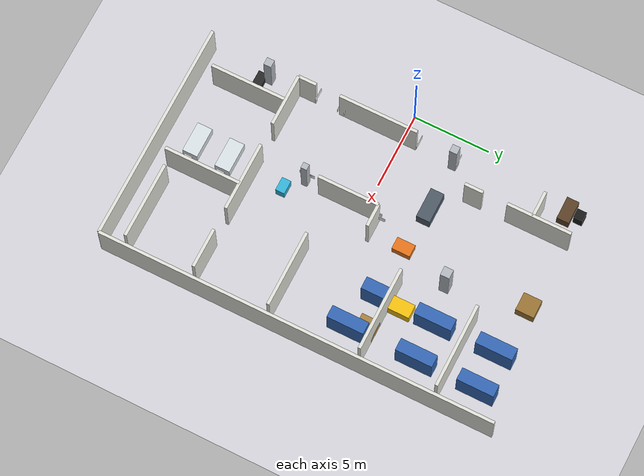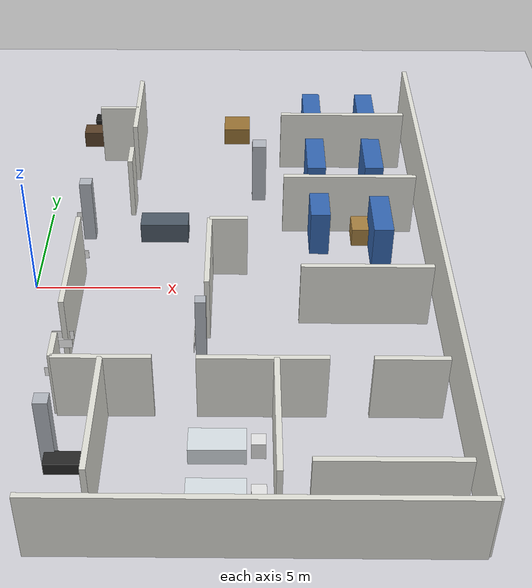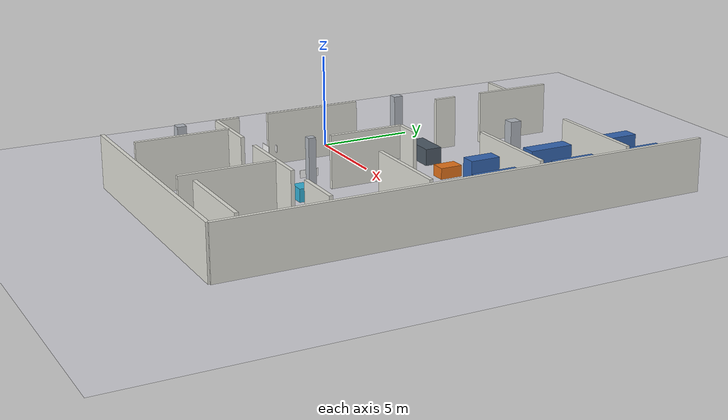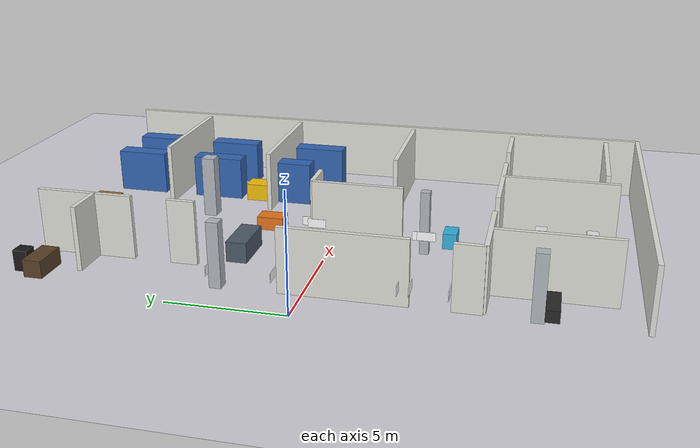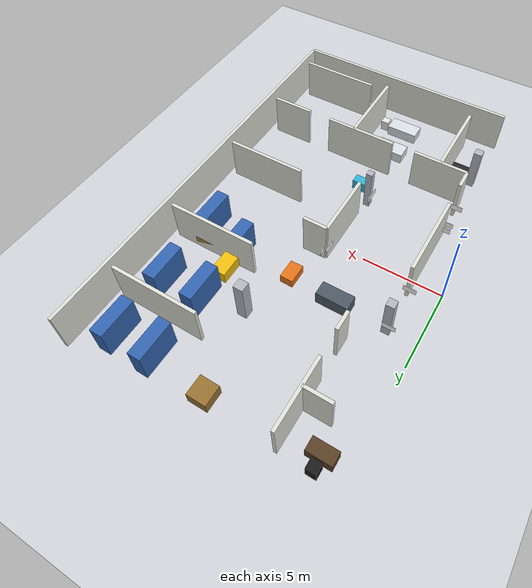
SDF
<sdf version="1.9">
 <world name="realistic_facility_world">
  <model name="ground_plane">
   <static>true</static>
   <link name="link">
    <collision name="collision">
     <geometry><plane><normal>0 0 1</normal><size>36 30</size></plane></geometry>
    </collision>
    <visual name="visual">
     <geometry><plane><normal>0 0 1</normal><size>36 30</size></plane></geometry>
     <material>
      <ambient>0.82 0.82 0.85 1</ambient>
      <diffuse>0.82 0.82 0.85 1</diffuse>
      <specular>0.15 0.15 0.15 1</specular>
     </material>
    </visual>
   </link>
  </model>
  <model name="wall_south_right">
   <static>true</static>
   <pose>8.750 -13.000 1.4 0 0 0</pose>
   <link name="link">
    <collision name="collision"><geometry><box><size>14.500 0.200 2.8</size></box></geometry></collision>
    <visual name="visual">
     <geometry><box><size>14.500 0.200 2.8</size></box></geometry>
     <material>
      <ambient>0.88 0.88 0.85 1</ambient>
      <diffuse>0.88 0.88 0.85 1</diffuse>
      <specular>0.1 0.1 0.1 1</specular>
     </material>
    </visual>
   </link>
  </model>
  <model name="wall_east">
   <static>true</static>
   <pose>16.000 0.000 1.4 0 0 0</pose>
   <link name="link">
    <collision name="collision"><geometry><box><size>0.200 26.000 2.8</size></box></geometry></collision>
    <visual name="visual">
     <geometry><box><size>0.200 26.000 2.8</size></box></geometry>
     <material>
      <ambient>0.88 0.88 0.85 1</ambient>
      <diffuse>0.88 0.88 0.85 1</diffuse>
      <specular>0.1 0.1 0.1 1</specular>
     </material>
    </visual>
   </link>
  </model>
  <model name="wall_rec_div_e1">
   <static>true</static>
   <pose>3.525 -7.000 1.4 0 0 0</pose>
   <link name="link">
    <collision name="collision"><geometry><box><size>3.450 0.200 2.8</size></box></geometry></collision>
    <visual name="visual">
     <geometry><box><size>3.450 0.200 2.8</size></box></geometry>
     <material>
      <ambient>0.88 0.88 0.85 1</ambient>
      <diffuse>0.88 0.88 0.85 1</diffuse>
      <specular>0.1 0.1 0.1 1</specular>
     </material>
    </visual>
   </link>
  </model>
  <model name="wall_rec_div_e2">
   <static>true</static>
   <pose>9.025 -7.000 1.4 0 0 0</pose>
   <link name="link">
    <collision name="collision"><geometry><box><size>4.550 0.200 2.8</size></box></geometry></collision>
    <visual name="visual">
     <geometry><box><size>4.550 0.200 2.8</size></box></geometry>
     <material>
      <ambient>0.88 0.88 0.85 1</ambient>
      <diffuse>0.88 0.88 0.85 1</diffuse>
      <specular>0.1 0.1 0.1 1</specular>
     </material>
    </visual>
   </link>
  </model>
  <model name="wall_spine_e_south">
   <static>true</static>
   <pose>1.800 -6.400 1.4 0 0 0</pose>
   <link name="link">
    <collision name="collision"><geometry><box><size>0.200 1.200 2.8</size></box></geometry></collision>
    <visual name="visual">
     <geometry><box><size>0.200 1.200 2.8</size></box></geometry>
     <material>
      <ambient>0.88 0.88 0.85 1</ambient>
      <diffuse>0.88 0.88 0.85 1</diffuse>
      <specular>0.1 0.1 0.1 1</specular>
     </material>
    </visual>
   </link>
  </model>
  <model name="wall_spine_e_mid">
   <static>true</static>
   <pose>1.800 -1.600 1.4 0 0 0</pose>
   <link name="link">
    <collision name="collision"><geometry><box><size>0.200 5.200 2.8</size></box></geometry></collision>
    <visual name="visual">
     <geometry><box><size>0.200 5.200 2.8</size></box></geometry>
     <material>
      <ambient>0.88 0.88 0.85 1</ambient>
      <diffuse>0.88 0.88 0.85 1</diffuse>
      <specular>0.1 0.1 0.1 1</specular>
     </material>
    </visual>
   </link>
  </model>
  <model name="wall_hosp_ward_w">
   <static>true</static>
   <pose>3.500 -9.500 1.4 0 0 0</pose>
   <link name="link">
    <collision name="collision"><geometry><box><size>0.200 5.000 2.8</size></box></geometry></collision>
    <visual name="visual">
     <geometry><box><size>0.200 5.000 2.8</size></box></geometry>
     <material>
      <ambient>0.88 0.88 0.85 1</ambient>
      <diffuse>0.88 0.88 0.85 1</diffuse>
      <specular>0.1 0.1 0.1 1</specular>
     </material>
    </visual>
   </link>
  </model>
  <model name="wall_hosp_ward_div">
   <static>true</static>
   <pose>9.500 -9.500 1.4 0 0 0</pose>
   <link name="link">
    <collision name="collision"><geometry><box><size>0.200 5.000 2.8</size></box></geometry></collision>
    <visual name="visual">
     <geometry><box><size>0.200 5.000 2.8</size></box></geometry>
     <material>
      <ambient>0.88 0.88 0.85 1</ambient>
      <diffuse>0.88 0.88 0.85 1</diffuse>
      <specular>0.1 0.1 0.1 1</specular>
     </material>
    </visual>
   </link>
  </model>
  <model name="wall_triage_n">
   <static>true</static>
   <pose>13.000 -2.000 1.4 0 0 0</pose>
   <link name="link">
    <collision name="collision"><geometry><box><size>5.000 0.200 2.8</size></box></geometry></collision>
    <visual name="visual">
     <geometry><box><size>5.000 0.200 2.8</size></box></geometry>
     <material>
      <ambient>0.88 0.88 0.85 1</ambient>
      <diffuse>0.88 0.88 0.85 1</diffuse>
      <specular>0.1 0.1 0.1 1</specular>
     </material>
    </visual>
   </link>
  </model>
  <model name="wall_hosp_alcove_n">
   <static>true</static>
   <pose>14.100 -7.000 1.4 0 0 0</pose>
   <link name="link">
    <collision name="collision"><geometry><box><size>2.600 0.200 2.8</size></box></geometry></collision>
    <visual name="visual">
     <geometry><box><size>2.600 0.200 2.8</size></box></geometry>
     <material>
      <ambient>0.88 0.88 0.85 1</ambient>
      <diffuse>0.88 0.88 0.85 1</diffuse>
      <specular>0.1 0.1 0.1 1</specular>
     </material>
    </visual>
   </link>
  </model>
  <model name="wall_hosp_alcove_s">
   <static>true</static>
   <pose>13.000 -11.500 1.4 0 0 0</pose>
   <link name="link">
    <collision name="collision"><geometry><box><size>5.000 0.200 2.8</size></box></geometry></collision>
    <visual name="visual">
     <geometry><box><size>5.000 0.200 2.8</size></box></geometry>
     <material>
      <ambient>0.88 0.88 0.85 1</ambient>
      <diffuse>0.88 0.88 0.85 1</diffuse>
      <specular>0.1 0.1 0.1 1</specular>
     </material>
    </visual>
   </link>
  </model>
  <model name="wall_cross_e">
   <static>true</static>
   <pose>7.750 1.000 1.4 0 0 0</pose>
   <link name="link">
    <collision name="collision"><geometry><box><size>1.500 0.200 2.8</size></box></geometry></collision>
    <visual name="visual">
     <geometry><box><size>1.500 0.200 2.8</size></box></geometry>
     <material>
      <ambient>0.88 0.88 0.85 1</ambient>
      <diffuse>0.88 0.88 0.85 1</diffuse>
      <specular>0.1 0.1 0.1 1</specular>
     </material>
    </visual>
   </link>
  </model>
  <model name="wall_office_e_south">
   <static>true</static>
   <pose>3.500 5.600 1.4 0 0 0</pose>
   <link name="link">
    <collision name="collision"><geometry><box><size>0.200 1.200 2.8</size></box></geometry></collision>
    <visual name="visual">
     <geometry><box><size>0.200 1.200 2.8</size></box></geometry>
     <material>
      <ambient>0.88 0.88 0.85 1</ambient>
      <diffuse>0.88 0.88 0.85 1</diffuse>
      <specular>0.1 0.1 0.1 1</specular>
     </material>
    </visual>
   </link>
  </model>
  <model name="wall_office_e_north">
   <static>true</static>
   <pose>3.500 9.900 1.4 0 0 0</pose>
   <link name="link">
    <collision name="collision"><geometry><box><size>0.200 4.200 2.8</size></box></geometry></collision>
    <visual name="visual">
     <geometry><box><size>0.200 4.200 2.8</size></box></geometry>
     <material>
      <ambient>0.88 0.88 0.85 1</ambient>
      <diffuse>0.88 0.88 0.85 1</diffuse>
      <specular>0.1 0.1 0.1 1</specular>
     </material>
    </visual>
   </link>
  </model>
  <model name="wall_archive_s">
   <static>true</static>
   <pose>2.650 9.500 1.4 0 0 0</pose>
   <link name="link">
    <collision name="collision"><geometry><box><size>1.700 0.200 2.8</size></box></geometry></collision>
    <visual name="visual">
     <geometry><box><size>1.700 0.200 2.8</size></box></geometry>
     <material>
      <ambient>0.88 0.88 0.85 1</ambient>
      <diffuse>0.88 0.88 0.85 1</diffuse>
      <specular>0.1 0.1 0.1 1</specular>
     </material>
    </visual>
   </link>
  </model>
  <model name="wall_wh_corridor_e">
   <static>true</static>
   <pose>7.000 -1.000 1.4 0 0 0</pose>
   <link name="link">
    <collision name="collision"><geometry><box><size>0.200 4.000 2.8</size></box></geometry></collision>
    <visual name="visual">
     <geometry><box><size>0.200 4.000 2.8</size></box></geometry>
     <material>
      <ambient>0.88 0.88 0.85 1</ambient>
      <diffuse>0.88 0.88 0.85 1</diffuse>
      <specular>0.1 0.1 0.1 1</specular>
     </material>
    </visual>
   </link>
  </model>
  <model name="wall_wh_div_1">
   <static>true</static>
   <pose>12.750 4.000 1.4 0 0 0</pose>
   <link name="link">
    <collision name="collision"><geometry><box><size>5.500 0.200 2.8</size></box></geometry></collision>
    <visual name="visual">
     <geometry><box><size>5.500 0.200 2.8</size></box></geometry>
     <material>
      <ambient>0.88 0.88 0.85 1</ambient>
      <diffuse>0.88 0.88 0.85 1</diffuse>
      <specular>0.1 0.1 0.1 1</specular>
     </material>
    </visual>
   </link>
  </model>
  <model name="wall_wh_div_2">
   <static>true</static>
   <pose>12.750 9.000 1.4 0 0 0</pose>
   <link name="link">
    <collision name="collision"><geometry><box><size>5.500 0.200 2.8</size></box></geometry></collision>
    <visual name="visual">
     <geometry><box><size>5.500 0.200 2.8</size></box></geometry>
     <material>
      <ambient>0.88 0.88 0.85 1</ambient>
      <diffuse>0.88 0.88 0.85 1</diffuse>
      <specular>0.1 0.1 0.1 1</specular>
     </material>
    </visual>
   </link>
  </model>
  <model name="pillar_rec_2">
   <static>true</static>
   <pose>1.800 -9.000 1.4 0 0 0</pose>
   <link name="link">
    <collision name="collision"><geometry><box><size>0.500 0.500 2.8</size></box></geometry></collision>
    <visual name="visual">
     <geometry><box><size>0.500 0.500 2.8</size></box></geometry>
     <material><ambient>0.7 0.72 0.75 1</ambient><diffuse>0.7 0.72 0.75 1</diffuse></material>
    </visual>
   </link>
  </model>
  <model name="pillar_center_2">
   <static>true</static>
   <pose>1.800 3.500 1.4 0 0 0</pose>
   <link name="link">
    <collision name="collision"><geometry><box><size>0.500 0.500 2.8</size></box></geometry></collision>
    <visual name="visual">
     <geometry><box><size>0.500 0.500 2.8</size></box></geometry>
     <material><ambient>0.7 0.72 0.75 1</ambient><diffuse>0.7 0.72 0.75 1</diffuse></material>
    </visual>
   </link>
  </model>
  <model name="pillar_wh_1">
   <static>true</static>
   <pose>9.000 6.500 1.4 0 0 0</pose>
   <link name="link">
    <collision name="collision"><geometry><box><size>0.600 0.600 2.8</size></box></geometry></collision>
    <visual name="visual">
     <geometry><box><size>0.600 0.600 2.8</size></box></geometry>
     <material><ambient>0.7 0.72 0.75 1</ambient><diffuse>0.7 0.72 0.75 1</diffuse></material>
    </visual>
   </link>
  </model>
  <model name="pillar_j2">
   <static>true</static>
   <pose>6.800 -4.000 1.4 0 0 0</pose>
   <link name="link">
    <collision name="collision"><geometry><box><size>0.400 0.400 2.8</size></box></geometry></collision>
    <visual name="visual">
     <geometry><box><size>0.400 0.400 2.8</size></box></geometry>
     <material><ambient>0.7 0.72 0.75 1</ambient><diffuse>0.7 0.72 0.75 1</diffuse></material>
    </visual>
   </link>
  </model>
  <model name="waiting_bench_e">
   <static>true</static>
   <pose>2.500 -9.500 0.250 0 0 0</pose>
   <link name="link">
    <collision name="collision"><geometry><box><size>1.600 0.600 0.500</size></box></geometry></collision>
    <visual name="visual">
     <geometry><box><size>1.600 0.600 0.500</size></box></geometry>
     <material><ambient>0.15 0.15 0.15 1</ambient><diffuse>0.15 0.15 0.15 1</diffuse></material>
    </visual>
   </link>
  </model>
  <model name="hospital_bed_1">
   <static>true</static>
   <pose>7.500 -8.800 0.350 0 0 0</pose>
   <link name="link">
    <collision name="collision"><geometry><box><size>2.000 1.000 0.700</size></box></geometry></collision>
    <visual name="visual">
     <geometry><box><size>2.000 1.000 0.700</size></box></geometry>
     <material><ambient>0.85 0.88 0.90 1</ambient><diffuse>0.85 0.88 0.90 1</diffuse></material>
    </visual>
   </link>
  </model>
  <model name="hospital_bed_2">
   <static>true</static>
   <pose>7.500 -11.000 0.350 0 0 0</pose>
   <link name="link">
    <collision name="collision"><geometry><box><size>2.000 1.000 0.700</size></box></geometry></collision>
    <visual name="visual">
     <geometry><box><size>2.000 1.000 0.700</size></box></geometry>
     <material><ambient>0.85 0.88 0.90 1</ambient><diffuse>0.85 0.88 0.90 1</diffuse></material>
    </visual>
   </link>
  </model>
  <model name="bedside_table_1">
   <static>true</static>
   <pose>8.900 -8.800 0.350 0 0 0</pose>
   <link name="link">
    <collision name="collision"><geometry><box><size>0.500 0.500 0.700</size></box></geometry></collision>
    <visual name="visual">
     <geometry><box><size>0.500 0.500 0.700</size></box></geometry>
     <material><ambient>0.90 0.90 0.90 1</ambient><diffuse>0.90 0.90 0.90 1</diffuse></material>
    </visual>
   </link>
  </model>
  <model name="bedside_table_2">
   <static>true</static>
   <pose>8.900 -11.000 0.350 0 0 0</pose>
   <link name="link">
    <collision name="collision"><geometry><box><size>0.500 0.500 0.700</size></box></geometry></collision>
    <visual name="visual">
     <geometry><box><size>0.500 0.500 0.700</size></box></geometry>
     <material><ambient>0.90 0.90 0.90 1</ambient><diffuse>0.90 0.90 0.90 1</diffuse></material>
    </visual>
   </link>
  </model>
  <model name="wh_rack_1">
   <static>true</static>
   <pose>11.500 3.100 1.000 0 0 0</pose>
   <link name="link">
    <collision name="collision"><geometry><box><size>0.800 1.600 2.000</size></box></geometry></collision>
    <visual name="visual">
     <geometry><box><size>0.800 1.600 2.000</size></box></geometry>
     <material><ambient>0.20 0.40 0.70 1</ambient><diffuse>0.20 0.40 0.70 1</diffuse></material>
    </visual>
   </link>
  </model>
  <model name="wh_rack_2">
   <static>true</static>
   <pose>11.500 7.000 1.000 0 0 0</pose>
   <link name="link">
    <collision name="collision"><geometry><box><size>0.800 2.400 2.000</size></box></geometry></collision>
    <visual name="visual">
     <geometry><box><size>0.800 2.400 2.000</size></box></geometry>
     <material><ambient>0.20 0.40 0.70 1</ambient><diffuse>0.20 0.40 0.70 1</diffuse></material>
    </visual>
   </link>
  </model>
  <model name="wh_rack_3">
   <static>true</static>
   <pose>11.500 11.000 1.000 0 0 0</pose>
   <link name="link">
    <collision name="collision"><geometry><box><size>0.800 2.400 2.000</size></box></geometry></collision>
    <visual name="visual">
     <geometry><box><size>0.800 2.400 2.000</size></box></geometry>
     <material><ambient>0.20 0.40 0.70 1</ambient><diffuse>0.20 0.40 0.70 1</diffuse></material>
    </visual>
   </link>
  </model>
  <model name="wh_rack_4">
   <static>true</static>
   <pose>14.000 2.500 1.000 0 0 0</pose>
   <link name="link">
    <collision name="collision"><geometry><box><size>0.800 2.400 2.000</size></box></geometry></collision>
    <visual name="visual">
     <geometry><box><size>0.800 2.400 2.000</size></box></geometry>
     <material><ambient>0.20 0.40 0.70 1</ambient><diffuse>0.20 0.40 0.70 1</diffuse></material>
    </visual>
   </link>
  </model>
  <model name="wh_rack_5">
   <static>true</static>
   <pose>14.000 7.000 1.000 0 0 0</pose>
   <link name="link">
    <collision name="collision"><geometry><box><size>0.800 2.400 2.000</size></box></geometry></collision>
    <visual name="visual">
     <geometry><box><size>0.800 2.400 2.000</size></box></geometry>
     <material><ambient>0.20 0.40 0.70 1</ambient><diffuse>0.20 0.40 0.70 1</diffuse></material>
    </visual>
   </link>
  </model>
  <model name="wh_rack_6">
   <static>true</static>
   <pose>14.000 11.000 1.000 0 0 0</pose>
   <link name="link">
    <collision name="collision"><geometry><box><size>0.800 2.400 2.000</size></box></geometry></collision>
    <visual name="visual">
     <geometry><box><size>0.800 2.400 2.000</size></box></geometry>
     <material><ambient>0.20 0.40 0.70 1</ambient><diffuse>0.20 0.40 0.70 1</diffuse></material>
    </visual>
   </link>
  </model>
  <model name="wh_pallets">
   <static>true</static>
   <pose>8.000 11.500 0.400 0 0 0</pose>
   <link name="link">
    <collision name="collision"><geometry><box><size>1.200 1.200 0.800</size></box></geometry></collision>
    <visual name="visual">
     <geometry><box><size>1.200 1.200 0.800</size></box></geometry>
     <material><ambient>0.60 0.45 0.20 1</ambient><diffuse>0.60 0.45 0.20 1</diffuse></material>
    </visual>
   </link>
  </model>
  <model name="loading_pallet_stack">
   <static>true</static>
   <pose>13.500 3.500 0.400 0 0 0</pose>
   <link name="link">
    <collision name="collision"><geometry><box><size>1.200 1.200 0.800</size></box></geometry></collision>
    <visual name="visual">
     <geometry><box><size>1.200 1.200 0.800</size></box></geometry>
     <material><ambient>0.65 0.50 0.25 1</ambient><diffuse>0.65 0.50 0.25 1</diffuse></material>
    </visual>
   </link>
  </model>
  <model name="wh_workstation_1">
   <static>true</static>
   <pose>5.000 3.500 0.450 0 0 0</pose>
   <link name="link">
    <collision name="collision"><geometry><box><size>2.000 0.900 0.900</size></box></geometry></collision>
    <visual name="visual">
     <geometry><box><size>2.000 0.900 0.900</size></box></geometry>
     <material><ambient>0.30 0.35 0.40 1</ambient><diffuse>0.30 0.35 0.40 1</diffuse></material>
    </visual>
   </link>
  </model>
  <model name="office_desk_2">
   <static>true</static>
   <pose>1.500 11.000 0.380 0 0 0</pose>
   <link name="link">
    <collision name="collision"><geometry><box><size>1.500 0.800 0.750</size></box></geometry></collision>
    <visual name="visual">
     <geometry><box><size>1.500 0.800 0.750</size></box></geometry>
     <material><ambient>0.35 0.25 0.15 1</ambient><diffuse>0.35 0.25 0.15 1</diffuse></material>
    </visual>
   </link>
  </model>
  <model name="office_chair_2">
   <static>true</static>
   <pose>1.500 11.800 0.450 0 0 0</pose>
   <link name="link">
    <collision name="collision"><geometry><box><size>0.600 0.600 0.900</size></box></geometry></collision>
    <visual name="visual">
     <geometry><box><size>0.600 0.600 0.900</size></box></geometry>
     <material><ambient>0.10 0.10 0.10 1</ambient><diffuse>0.10 0.10 0.10 1</diffuse></material>
    </visual>
   </link>
  </model>
  <model name="sign_j1_hospital">
   <static>true</static>
   <pose>1.650 -4.250 0.850 0.0 0.0 3.1416</pose>
   <link name="link">
    <visual name="board_visual">
     <geometry><box><size>0.8 0.03 0.4</size></box></geometry>
     <material>
      <ambient>1.0 1.0 1.0 1.0</ambient>
      <diffuse>1.0 1.0 1.0 1.0</diffuse>
      <specular>0.2 0.2 0.2 1.0</specular>
      <emissive>0.08 0.08 0.08 1.0</emissive>
      <pbr>
       <metal>
        <albedo_map>/home/soham-darade/CV_Autonomous_Navigation/ros2_ws/src/autonomous_robot_gazebo/materials/textures/signs/hospital_right.png</albedo_map>
        <roughness>0.2</roughness>
        <metalness>0.0</metalness>
       </metal>
      </pbr>
     </material>
    </visual>
    <collision name="board_collision"><geometry><box><size>0.8 0.03 0.4</size></box></geometry></collision>
   </link>
  </model>
  <model name="sign_j1_office">
   <static>true</static>
   <pose>1.650 -3.800 0.850 0.0 0.0 3.1416</pose>
   <link name="link">
    <visual name="board_visual">
     <geometry><box><size>0.8 0.03 0.4</size></box></geometry>
     <material>
      <ambient>1.0 1.0 1.0 1.0</ambient>
      <diffuse>1.0 1.0 1.0 1.0</diffuse>
      <specular>0.2 0.2 0.2 1.0</specular>
      <emissive>0.08 0.08 0.08 1.0</emissive>
      <pbr>
       <metal>
        <albedo_map>/home/soham-darade/CV_Autonomous_Navigation/ros2_ws/src/autonomous_robot_gazebo/materials/textures/signs/office_straight.png</albedo_map>
        <roughness>0.2</roughness>
        <metalness>0.0</metalness>
       </metal>
      </pbr>
     </material>
    </visual>
    <collision name="board_collision"><geometry><box><size>0.8 0.03 0.4</size></box></geometry></collision>
   </link>
  </model>
  <model name="sign_j1_hospital_south">
   <static>true</static>
   <pose>1.650 -5.750 0.850 0.0 0.0 0.0000</pose>
   <link name="link">
    <visual name="board_visual">
     <geometry><box><size>0.8 0.03 0.4</size></box></geometry>
     <material>
      <ambient>1.0 1.0 1.0 1.0</ambient>
      <diffuse>1.0 1.0 1.0 1.0</diffuse>
      <specular>0.2 0.2 0.2 1.0</specular>
      <emissive>0.08 0.08 0.08 1.0</emissive>
      <pbr>
       <metal>
        <albedo_map>/home/soham-darade/CV_Autonomous_Navigation/ros2_ws/src/autonomous_robot_gazebo/materials/textures/signs/hospital_left.png</albedo_map>
        <roughness>0.2</roughness>
        <metalness>0.0</metalness>
       </metal>
      </pbr>
     </material>
    </visual>
    <collision name="board_collision"><geometry><box><size>0.8 0.03 0.4</size></box></geometry></collision>
   </link>
  </model>
  <model name="sign_j2_hospital">
   <static>true</static>
   <pose>6.550 -4.100 0.850 0.0 0.0 1.5708</pose>
   <link name="link">
    <visual name="board_visual">
     <geometry><box><size>0.8 0.03 0.4</size></box></geometry>
     <material>
      <ambient>1.0 1.0 1.0 1.0</ambient>
      <diffuse>1.0 1.0 1.0 1.0</diffuse>
      <specular>0.2 0.2 0.2 1.0</specular>
      <emissive>0.08 0.08 0.08 1.0</emissive>
      <pbr>
       <metal>
        <albedo_map>/home/soham-darade/CV_Autonomous_Navigation/ros2_ws/src/autonomous_robot_gazebo/materials/textures/signs/hospital_right.png</albedo_map>
        <roughness>0.2</roughness>
        <metalness>0.0</metalness>
       </metal>
      </pbr>
     </material>
    </visual>
    <collision name="board_collision"><geometry><box><size>0.8 0.03 0.4</size></box></geometry></collision>
   </link>
  </model>
  <model name="sign_j2_warehouse">
   <static>true</static>
   <pose>6.550 -3.900 0.850 0.0 0.0 1.5708</pose>
   <link name="link">
    <visual name="board_visual">
     <geometry><box><size>0.8 0.03 0.4</size></box></geometry>
     <material>
      <ambient>1.0 1.0 1.0 1.0</ambient>
      <diffuse>1.0 1.0 1.0 1.0</diffuse>
      <specular>0.2 0.2 0.2 1.0</specular>
      <emissive>0.08 0.08 0.08 1.0</emissive>
      <pbr>
       <metal>
        <albedo_map>/home/soham-darade/CV_Autonomous_Navigation/ros2_ws/src/autonomous_robot_gazebo/materials/textures/signs/warehouse_left.png</albedo_map>
        <roughness>0.2</roughness>
        <metalness>0.0</metalness>
       </metal>
      </pbr>
     </material>
    </visual>
    <collision name="board_collision"><geometry><box><size>0.8 0.03 0.4</size></box></geometry></collision>
   </link>
  </model>
  <model name="sign_j4_warehouse">
   <static>true</static>
   <pose>1.650 1.100 0.850 0.0 0.0 3.1416</pose>
   <link name="link">
    <visual name="board_visual">
     <geometry><box><size>0.8 0.03 0.4</size></box></geometry>
     <material>
      <ambient>1.0 1.0 1.0 1.0</ambient>
      <diffuse>1.0 1.0 1.0 1.0</diffuse>
      <specular>0.2 0.2 0.2 1.0</specular>
      <emissive>0.08 0.08 0.08 1.0</emissive>
      <pbr>
       <metal>
        <albedo_map>/home/soham-darade/CV_Autonomous_Navigation/ros2_ws/src/autonomous_robot_gazebo/materials/textures/signs/warehouse_right.png</albedo_map>
        <roughness>0.2</roughness>
        <metalness>0.0</metalness>
       </metal>
      </pbr>
     </material>
    </visual>
    <collision name="board_collision"><geometry><box><size>0.8 0.03 0.4</size></box></geometry></collision>
   </link>
  </model>
  <model name="sign_j4_hospital">
   <static>true</static>
   <pose>1.650 3.750 0.850 0.0 0.0 0.0000</pose>
   <link name="link">
    <visual name="board_visual">
     <geometry><box><size>0.8 0.03 0.4</size></box></geometry>
     <material>
      <ambient>1.0 1.0 1.0 1.0</ambient>
      <diffuse>1.0 1.0 1.0 1.0</diffuse>
      <specular>0.2 0.2 0.2 1.0</specular>
      <emissive>0.08 0.08 0.08 1.0</emissive>
      <pbr>
       <metal>
        <albedo_map>/home/soham-darade/CV_Autonomous_Navigation/ros2_ws/src/autonomous_robot_gazebo/materials/textures/signs/hospital_straight.png</albedo_map>
        <roughness>0.2</roughness>
        <metalness>0.0</metalness>
       </metal>
      </pbr>
     </material>
    </visual>
    <collision name="board_collision"><geometry><box><size>0.8 0.03 0.4</size></box></geometry></collision>
   </link>
  </model>
  <model name="sign_j6_loading">
   <static>true</static>
   <pose>7.100 1.100 0.850 0.0 0.0 1.5708</pose>
   <link name="link">
    <visual name="board_visual">
     <geometry><box><size>0.8 0.03 0.4</size></box></geometry>
     <material>
      <ambient>1.0 1.0 1.0 1.0</ambient>
      <diffuse>1.0 1.0 1.0 1.0</diffuse>
      <specular>0.2 0.2 0.2 1.0</specular>
      <emissive>0.08 0.08 0.08 1.0</emissive>
      <pbr>
       <metal>
        <albedo_map>/home/soham-darade/CV_Autonomous_Navigation/ros2_ws/src/autonomous_robot_gazebo/materials/textures/signs/loading_right.png</albedo_map>
        <roughness>0.2</roughness>
        <metalness>0.0</metalness>
       </metal>
      </pbr>
     </material>
    </visual>
    <collision name="board_collision"><geometry><box><size>0.8 0.03 0.4</size></box></geometry></collision>
   </link>
  </model>
  <model name="sign_j6_charging">
   <static>true</static>
   <pose>6.900 0.800 0.850 0.0 0.0 -1.5708</pose>
   <link name="link">
    <visual name="board_visual">
     <geometry><box><size>0.8 0.03 0.4</size></box></geometry>
     <material>
      <ambient>1.0 1.0 1.0 1.0</ambient>
      <diffuse>1.0 1.0 1.0 1.0</diffuse>
      <specular>0.2 0.2 0.2 1.0</specular>
      <emissive>0.08 0.08 0.08 1.0</emissive>
      <pbr>
       <metal>
        <albedo_map>/home/soham-darade/CV_Autonomous_Navigation/ros2_ws/src/autonomous_robot_gazebo/materials/textures/signs/charging_left.png</albedo_map>
        <roughness>0.2</roughness>
        <metalness>0.0</metalness>
       </metal>
      </pbr>
     </material>
    </visual>
    <collision name="board_collision"><geometry><box><size>0.8 0.03 0.4</size></box></geometry></collision>
   </link>
  </model>
  <model name="dynamic_warehouse_cart">
   <pose>8.0 3.2035 0.3 0 0 1.5708</pose>
   <link name="cart_link">
    <inertial><mass>25.0</mass><inertia><ixx>1.5</ixx><iyy>1.5</iyy><izz>1.5</izz></inertia></inertial>
    <collision name="cart_collision"><geometry><box><size>1.2 0.8 0.6</size></box></geometry></collision>
    <visual name="cart_visual">
     <geometry><box><size>1.2 0.8 0.6</size></box></geometry>
     <material><ambient>0.9 0.45 0.1 1</ambient><diffuse>0.9 0.45 0.1 1</diffuse></material>
    </visual>
   </link>
   <plugin filename="gz-sim-velocity-control-system" name="gz::sim::systems::VelocityControl">
    <link_name>cart_link</link_name>
    <topic>/cart/cmd_vel</topic>
   </plugin>
  </model>
  <model name="dynamic_hospital_trolley">
   <pose>7.7935 -5.0 0.35 0 0 0</pose>
   <link name="trolley_link">
    <inertial><mass>18.0</mass><inertia><ixx>1.0</ixx><iyy>1.0</iyy><izz>1.0</izz></inertia></inertial>
    <collision name="trolley_collision"><geometry><box><size>0.9 0.6 0.7</size></box></geometry></collision>
    <visual name="trolley_visual">
     <geometry><box><size>0.9 0.6 0.7</size></box></geometry>
     <material><ambient>0.2 0.7 0.85 1</ambient><diffuse>0.2 0.7 0.85 1</diffuse></material>
    </visual>
   </link>
   <plugin filename="gz-sim-velocity-control-system" name="gz::sim::systems::VelocityControl">
    <link_name>trolley_link</link_name>
    <topic>/trolley/cmd_vel</topic>
   </plugin>
  </model>
  <model name="dynamic_forklift">
   <pose>11.5 4.8 0.4 0 0 1.5708</pose>
   <link name="forklift_link">
    <inertial><mass>40.0</mass><inertia><ixx>2.5</ixx><iyy>2.5</iyy><izz>2.5</izz></inertia></inertial>
    <collision name="forklift_collision"><geometry><box><size>1.4 0.9 0.8</size></box></geometry></collision>
    <visual name="forklift_visual">
     <geometry><box><size>1.4 0.9 0.8</size></box></geometry>
     <material><ambient>0.95 0.75 0.05 1</ambient><diffuse>0.95 0.75 0.05 1</diffuse></material>
    </visual>
   </link>
   <plugin filename="gz-sim-velocity-control-system" name="gz::sim::systems::VelocityControl">
    <link_name>forklift_link</link_name>
    <topic>/forklift/cmd_vel</topic>
   </plugin>
  </model>
 </world>
</sdf>
